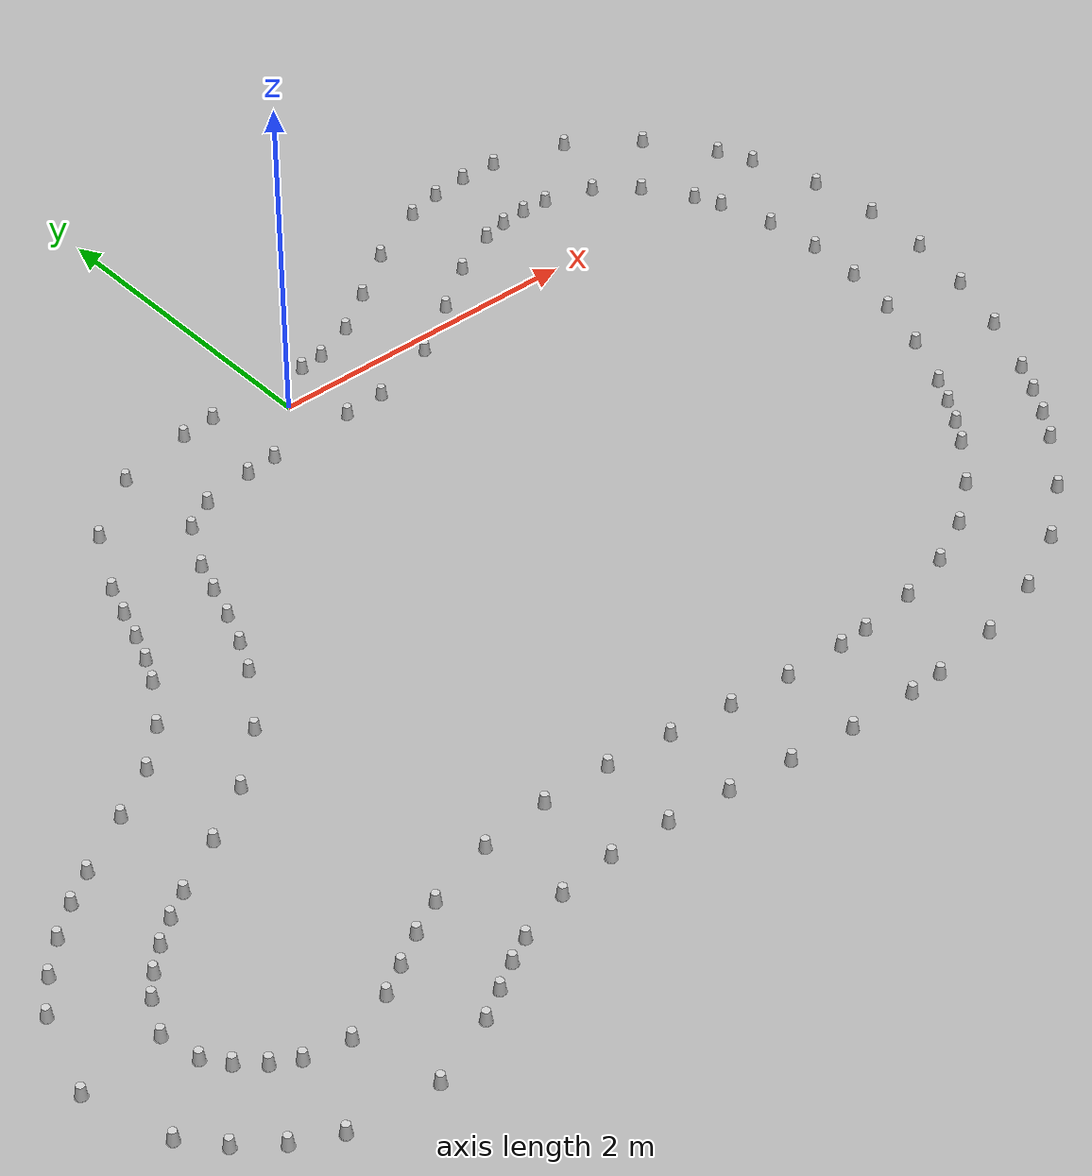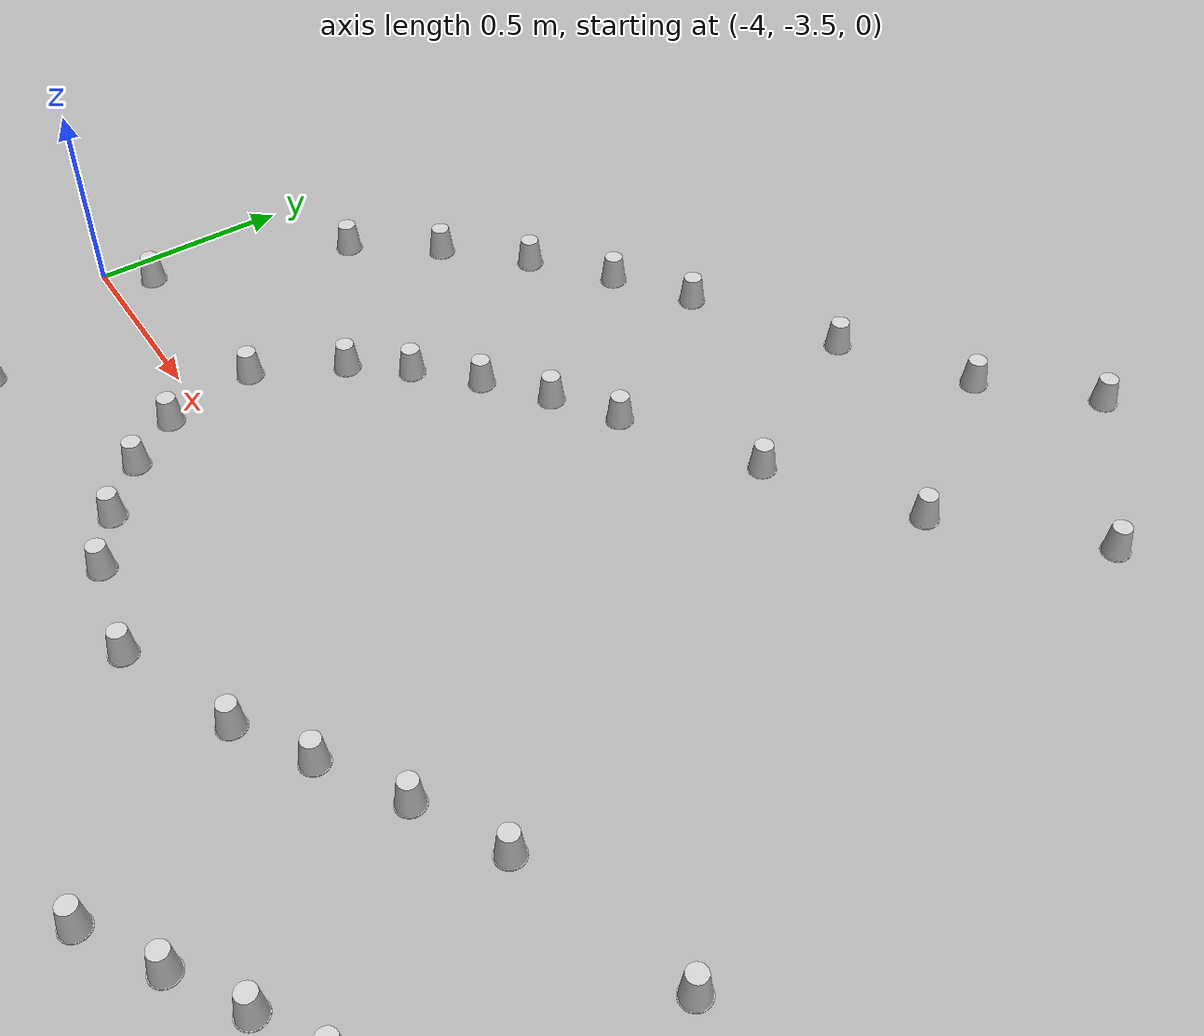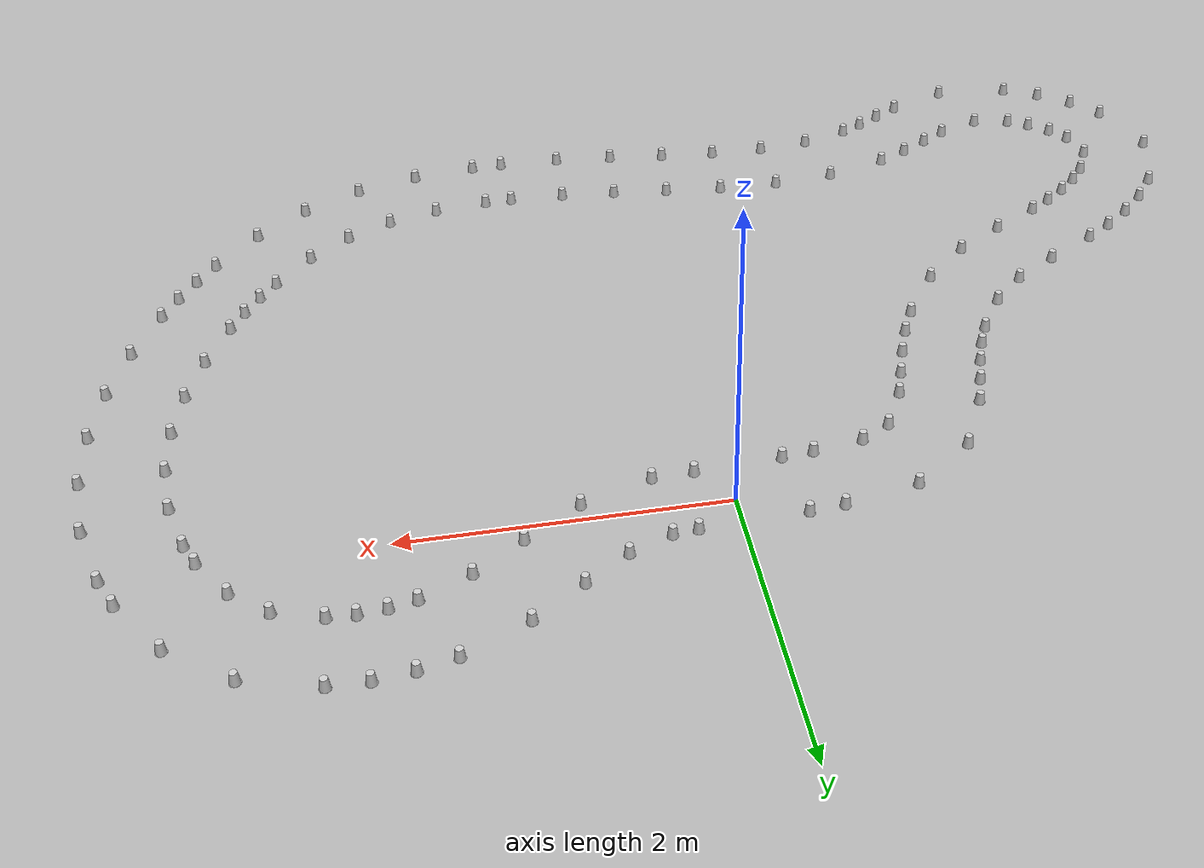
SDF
<?xml version='1.0' encoding='UTF-8'?>
<sdf version="1.4">
  <model name="some track">
    <include>
      <uri>model://cone_yellow</uri>
      <pose>0.1952887267832601 -0.2795931515854953 0 0 0 0</pose>
      <name>cone_right_0</name>
    </include>
    <include>
      <uri>model://cone_yellow</uri>
      <pose>0.45160578599919166 -0.26767883614049864 0 0 0 0</pose>
      <name>cone_right_1</name>
    </include>
    <include>
      <uri>model://cone_yellow</uri>
      <pose>0.8969519919301652 -0.11410654120415022 0 0 0 0</pose>
      <name>cone_right_2</name>
    </include>
    <include>
      <uri>model://cone_yellow</uri>
      <pose>1.25415394540925 0.12065823146250787 0 0 0 0</pose>
      <name>cone_right_3</name>
    </include>
    <include>
      <uri>model://cone_yellow</uri>
      <pose>1.5678517027770038 0.34187161370884434 0 0 0 0</pose>
      <name>cone_right_4</name>
    </include>
    <include>
      <uri>model://cone_yellow</uri>
      <pose>1.8789767391075562 0.48695296722528403 0 0 0 0</pose>
      <name>cone_right_5</name>
    </include>
    <include>
      <uri>model://cone_yellow</uri>
      <pose>2.044325364594258 0.5252332641263189 0 0 0 0</pose>
      <name>cone_right_6</name>
    </include>
    <include>
      <uri>model://cone_yellow</uri>
      <pose>2.214069341566254 0.540729741719355 0 0 0 0</pose>
      <name>cone_right_7</name>
    </include>
    <include>
      <uri>model://cone_yellow</uri>
      <pose>2.3806807632931477 0.5316878824063316 0 0 0 0</pose>
      <name>cone_right_8</name>
    </include>
    <include>
      <uri>model://cone_yellow</uri>
      <pose>2.675654765148086 0.4382001781138378 0 0 0 0</pose>
      <name>cone_right_9</name>
    </include>
    <include>
      <uri>model://cone_yellow</uri>
      <pose>2.902191498681817 0.24862296450018867 0 0 0 0</pose>
      <name>cone_right_10</name>
    </include>
    <include>
      <uri>model://cone_yellow</uri>
      <pose>3.084091108342087 -0.02715534310106199 0 0 0 0</pose>
      <name>cone_right_11</name>
    </include>
    <include>
      <uri>model://cone_yellow</uri>
      <pose>3.1539623970204054 -0.18557533441812596 0 0 0 0</pose>
      <name>cone_right_12</name>
    </include>
    <include>
      <uri>model://cone_yellow</uri>
      <pose>3.245575604065701 -0.5187520738251418 0 0 0 0</pose>
      <name>cone_right_13</name>
    </include>
    <include>
      <uri>model://cone_yellow</uri>
      <pose>3.2768707166137063 -0.8644308128918262 0 0 0 0</pose>
      <name>cone_right_14</name>
    </include>
    <include>
      <uri>model://cone_yellow</uri>
      <pose>3.2540793244188735 -1.2143624718607224 0 0 0 0</pose>
      <name>cone_right_15</name>
    </include>
    <include>
      <uri>model://cone_yellow</uri>
      <pose>3.1821673367527934 -1.5623931087279697 0 0 0 0</pose>
      <name>cone_right_16</name>
    </include>
    <include>
      <uri>model://cone_yellow</uri>
      <pose>3.0653537776231934 -1.906242100515302 0 0 0 0</pose>
      <name>cone_right_17</name>
    </include>
    <include>
      <uri>model://cone_yellow</uri>
      <pose>2.908095302444684 -2.243316839419225 0 0 0 0</pose>
      <name>cone_right_18</name>
    </include>
    <include>
      <uri>model://cone_yellow</uri>
      <pose>2.815815826580324 -2.4078399576608867 0 0 0 0</pose>
      <name>cone_right_19</name>
    </include>
    <include>
      <uri>model://cone_yellow</uri>
      <pose>2.715327918054046 -2.566386416972675 0 0 0 0</pose>
      <name>cone_right_20</name>
    </include>
    <include>
      <uri>model://cone_yellow</uri>
      <pose>2.6068994477109886 -2.7165487262369017 0 0 0 0</pose>
      <name>cone_right_21</name>
    </include>
    <include>
      <uri>model://cone_yellow</uri>
      <pose>2.3669670645076804 -2.98373153296215 0 0 0 0</pose>
      <name>cone_right_22</name>
    </include>
    <include>
      <uri>model://cone_yellow</uri>
      <pose>2.09791196473016 -3.1947072471971207 0 0 0 0</pose>
      <name>cone_right_23</name>
    </include>
    <include>
      <uri>model://cone_yellow</uri>
      <pose>1.7994530576844796 -3.3406791347045055 0 0 0 0</pose>
      <name>cone_right_24</name>
    </include>
    <include>
      <uri>model://cone_yellow</uri>
      <pose>1.464961499367734 -3.432287202489749 0 0 0 0</pose>
      <name>cone_right_25</name>
    </include>
    <include>
      <uri>model://cone_yellow</uri>
      <pose>1.1035175708118503 -3.4772882555636406 0 0 0 0</pose>
      <name>cone_right_26</name>
    </include>
    <include>
      <uri>model://cone_yellow</uri>
      <pose>0.917280924601265 -3.4845167935816344 0 0 0 0</pose>
      <name>cone_right_27</name>
    </include>
    <include>
      <uri>model://cone_yellow</uri>
      <pose>0.543277060583318 -3.473876592139264 0 0 0 0</pose>
      <name>cone_right_28</name>
    </include>
    <include>
      <uri>model://cone_yellow</uri>
      <pose>0.16878354519314834 -3.4396558216366495 0 0 0 0</pose>
      <name>cone_right_29</name>
    </include>
    <include>
      <uri>model://cone_yellow</uri>
      <pose>-0.21387866557204388 -3.3963315091464974 0 0 0 0</pose>
      <name>cone_right_30</name>
    </include>
    <include>
      <uri>model://cone_yellow</uri>
      <pose>-0.6112634641730288 -3.35982895256339 0 0 0 0</pose>
      <name>cone_right_31</name>
    </include>
    <include>
      <uri>model://cone_yellow</uri>
      <pose>-1.0263280413146767 -3.349691273107797 0 0 0 0</pose>
      <name>cone_right_32</name>
    </include>
    <include>
      <uri>model://cone_yellow</uri>
      <pose>-1.4526348114397525 -3.392496012549326 0 0 0 0</pose>
      <name>cone_right_33</name>
    </include>
    <include>
      <uri>model://cone_yellow</uri>
      <pose>-1.879064332110703 -3.5186605490066594 0 0 0 0</pose>
      <name>cone_right_34</name>
    </include>
    <include>
      <uri>model://cone_yellow</uri>
      <pose>-2.0860980041334534 -3.621115313809681 0 0 0 0</pose>
      <name>cone_right_35</name>
    </include>
    <include>
      <uri>model://cone_yellow</uri>
      <pose>-2.277054788752283 -3.7342718002427793 0 0 0 0</pose>
      <name>cone_right_36</name>
    </include>
    <include>
      <uri>model://cone_yellow</uri>
      <pose>-2.4504599828133062 -3.8365645518561533 0 0 0 0</pose>
      <name>cone_right_37</name>
    </include>
    <include>
      <uri>model://cone_yellow</uri>
      <pose>-2.7508094398294785 -3.9487938706104004 0 0 0 0</pose>
      <name>cone_right_38</name>
    </include>
    <include>
      <uri>model://cone_yellow</uri>
      <pose>-3.0046463333656988 -3.8971978570324373 0 0 0 0</pose>
      <name>cone_right_39</name>
    </include>
    <include>
      <uri>model://cone_yellow</uri>
      <pose>-3.1430770702031436 -3.816442447764018 0 0 0 0</pose>
      <name>cone_right_40</name>
    </include>
    <include>
      <uri>model://cone_yellow</uri>
      <pose>-3.271112372015774 -3.705353228714746 0 0 0 0</pose>
      <name>cone_right_41</name>
    </include>
    <include>
      <uri>model://cone_yellow</uri>
      <pose>-3.3681428542012766 -3.5769524217683752 0 0 0 0</pose>
      <name>cone_right_42</name>
    </include>
    <include>
      <uri>model://cone_yellow</uri>
      <pose>-3.4154530842371003 -3.3428762871384876 0 0 0 0</pose>
      <name>cone_right_43</name>
    </include>
    <include>
      <uri>model://cone_yellow</uri>
      <pose>-3.305078417374178 -3.125408055915832 0 0 0 0</pose>
      <name>cone_right_44</name>
    </include>
    <include>
      <uri>model://cone_yellow</uri>
      <pose>-3.198314939745624 -2.9975953920851066 0 0 0 0</pose>
      <name>cone_right_45</name>
    </include>
    <include>
      <uri>model://cone_yellow</uri>
      <pose>-3.0650483183974133 -2.8724474255004315 0 0 0 0</pose>
      <name>cone_right_46</name>
    </include>
    <include>
      <uri>model://cone_yellow</uri>
      <pose>-2.917932999715441 -2.759911668094464 0 0 0 0</pose>
      <name>cone_right_47</name>
    </include>
    <include>
      <uri>model://cone_yellow</uri>
      <pose>-2.763559345727985 -2.6601670695024207 0 0 0 0</pose>
      <name>cone_right_48</name>
    </include>
    <include>
      <uri>model://cone_yellow</uri>
      <pose>-2.4367752729235956 -2.4741393747144604 0 0 0 0</pose>
      <name>cone_right_49</name>
    </include>
    <include>
      <uri>model://cone_yellow</uri>
      <pose>-2.1005772817493003 -2.2630996075782046 0 0 0 0</pose>
      <name>cone_right_50</name>
    </include>
    <include>
      <uri>model://cone_yellow</uri>
      <pose>-1.785849642618185 -1.971074793672893 0 0 0 0</pose>
      <name>cone_right_51</name>
    </include>
    <include>
      <uri>model://cone_yellow</uri>
      <pose>-1.5369220507825871 -1.6038577777540914 0 0 0 0</pose>
      <name>cone_right_52</name>
    </include>
    <include>
      <uri>model://cone_yellow</uri>
      <pose>-1.4379969683025196 -1.4009722105331783 0 0 0 0</pose>
      <name>cone_right_53</name>
    </include>
    <include>
      <uri>model://cone_yellow</uri>
      <pose>-1.3544730563115044 -1.18837501822779 0 0 0 0</pose>
      <name>cone_right_54</name>
    </include>
    <include>
      <uri>model://cone_yellow</uri>
      <pose>-1.2830879329979494 -0.9766119877124547 0 0 0 0</pose>
      <name>cone_right_55</name>
    </include>
    <include>
      <uri>model://cone_yellow</uri>
      <pose>-1.2155731682564568 -0.7824951450537574 0 0 0 0</pose>
      <name>cone_right_56</name>
    </include>
    <include>
      <uri>model://cone_yellow</uri>
      <pose>-1.0617377628920086 -0.49437633217907795 0 0 0 0</pose>
      <name>cone_right_57</name>
    </include>
    <include>
      <uri>model://cone_yellow</uri>
      <pose>-0.8680444273980805 -0.3822742509888316 0 0 0 0</pose>
      <name>cone_right_58</name>
    </include>
    <include>
      <uri>model://cone_yellow</uri>
      <pose>-0.5462032142118229 -0.32921608831248844 0 0 0 0</pose>
      <name>cone_right_59</name>
    </include>
    <include>
      <uri>model://cone_yellow</uri>
      <pose>-0.34845180618092453 -0.3109143245325599 0 0 0 0</pose>
      <name>cone_right_60</name>
    </include>
    <include>
      <uri>model://cone_blue</uri>
      <pose>0.26422089481575045 0.2156324093565269 0 0 0 0</pose>
      <name>cone_left_0</name>
    </include>
    <include>
      <uri>model://cone_blue</uri>
      <pose>0.41818552711847135 0.23120299986512866 0 0 0 0</pose>
      <name>cone_left_1</name>
    </include>
    <include>
      <uri>model://cone_blue</uri>
      <pose>0.6855457011929342 0.33900203324211364 0 0 0 0</pose>
      <name>cone_left_2</name>
    </include>
    <include>
      <uri>model://cone_blue</uri>
      <pose>0.9636187690254706 0.5275848971943644 0 0 0 0</pose>
      <name>cone_left_3</name>
    </include>
    <include>
      <uri>model://cone_blue</uri>
      <pose>1.2874182486939345 0.7558246035893851 0 0 0 0</pose>
      <name>cone_left_4</name>
    </include>
    <include>
      <uri>model://cone_blue</uri>
      <pose>1.6939412166579002 0.9514546953510067 0 0 0 0</pose>
      <name>cone_left_5</name>
    </include>
    <include>
      <uri>model://cone_blue</uri>
      <pose>1.9247760640930625 1.0107309106187348 0 0 0 0</pose>
      <name>cone_left_6</name>
    </include>
    <include>
      <uri>model://cone_blue</uri>
      <pose>2.1618018587975305 1.037990347684699 0 0 0 0</pose>
      <name>cone_left_7</name>
    </include>
    <include>
      <uri>model://cone_blue</uri>
      <pose>2.4000798309265177 1.0313114168549762 0 0 0 0</pose>
      <name>cone_left_8</name>
    </include>
    <include>
      <uri>model://cone_blue</uri>
      <pose>2.859376777020838 0.9032229972887986 0 0 0 0</pose>
      <name>cone_left_9</name>
    </include>
    <include>
      <uri>model://cone_blue</uri>
      <pose>3.2448183426067567 0.6127751934128165 0 0 0 0</pose>
      <name>cone_left_10</name>
    </include>
    <include>
      <uri>model://cone_blue</uri>
      <pose>3.514133373077681 0.227920431015339 0 0 0 0</pose>
      <name>cone_left_11</name>
    </include>
    <include>
      <uri>model://cone_blue</uri>
      <pose>3.6096290131666344 0.02025939280214882 0 0 0 0</pose>
      <name>cone_left_12</name>
    </include>
    <include>
      <uri>model://cone_blue</uri>
      <pose>3.7326935334383977 -0.4059862860894265 0 0 0 0</pose>
      <name>cone_left_13</name>
    </include>
    <include>
      <uri>model://cone_blue</uri>
      <pose>3.7761442396724996 -0.8374873689311769 0 0 0 0</pose>
      <name>cone_left_14</name>
    </include>
    <include>
      <uri>model://cone_blue</uri>
      <pose>3.751701443286542 -1.2630679829826899 0 0 0 0</pose>
      <name>cone_left_15</name>
    </include>
    <include>
      <uri>model://cone_blue</uri>
      <pose>3.6686121400996194 -1.678028109038724 0 0 0 0</pose>
      <name>cone_left_16</name>
    </include>
    <include>
      <uri>model://cone_blue</uri>
      <pose>3.5343461296382275 -2.0795804221623237 0 0 0 0</pose>
      <name>cone_left_17</name>
    </include>
    <include>
      <uri>model://cone_blue</uri>
      <pose>3.356088190069415 -2.465358215377975 0 0 0 0</pose>
      <name>cone_left_18</name>
    </include>
    <include>
      <uri>model://cone_blue</uri>
      <pose>3.25229803496807 -2.6517319045573693 0 0 0 0</pose>
      <name>cone_left_19</name>
    </include>
    <include>
      <uri>model://cone_blue</uri>
      <pose>3.1381554059976255 -2.833251393017344 0 0 0 0</pose>
      <name>cone_left_20</name>
    </include>
    <include>
      <uri>model://cone_blue</uri>
      <pose>3.012976105951288 -3.00827076454116 0 0 0 0</pose>
      <name>cone_left_21</name>
    </include>
    <include>
      <uri>model://cone_blue</uri>
      <pose>2.727095913797957 -3.3305848332331167 0 0 0 0</pose>
      <name>cone_left_22</name>
    </include>
    <include>
      <uri>model://cone_blue</uri>
      <pose>2.3894334989486476 -3.6009278708573422 0 0 0 0</pose>
      <name>cone_left_23</name>
    </include>
    <include>
      <uri>model://cone_blue</uri>
      <pose>1.99893615253385 -3.799161953214989 0 0 0 0</pose>
      <name>cone_left_24</name>
    </include>
    <include>
      <uri>model://cone_blue</uri>
      <pose>1.5798748173800758 -3.918902994818147 0 0 0 0</pose>
      <name>cone_left_25</name>
    </include>
    <include>
      <uri>model://cone_blue</uri>
      <pose>1.1513022065219234 -3.974999646421893 0 0 0 0</pose>
      <name>cone_left_26</name>
    </include>
    <include>
      <uri>model://cone_blue</uri>
      <pose>0.937682861402062 -3.984100381157103 0 0 0 0</pose>
      <name>cone_left_27</name>
    </include>
    <include>
      <uri>model://cone_blue</uri>
      <pose>0.5195032912685055 -3.973311080228109 0 0 0 0</pose>
      <name>cone_left_28</name>
    </include>
    <include>
      <uri>model://cone_blue</uri>
      <pose>0.11812789485560947 -3.9370832083865963 0 0 0 0</pose>
      <name>cone_left_29</name>
    </include>
    <include>
      <uri>model://cone_blue</uri>
      <pose>-0.27016310096206914 -3.893153471556399 0 0 0 0</pose>
      <name>cone_left_30</name>
    </include>
    <include>
      <uri>model://cone_blue</uri>
      <pose>-0.651659875371084 -3.8581944107989283 0 0 0 0</pose>
      <name>cone_left_31</name>
    </include>
    <include>
      <uri>model://cone_blue</uri>
      <pose>-1.026192903236452 -3.8496912548454967 0 0 0 0</pose>
      <name>cone_left_32</name>
    </include>
    <include>
      <uri>model://cone_blue</uri>
      <pose>-1.3817593407442654 -3.8874471895897416 0 0 0 0</pose>
      <name>cone_left_33</name>
    </include>
    <include>
      <uri>model://cone_blue</uri>
      <pose>-1.7083444020704261 -3.9886123608842636 0 0 0 0</pose>
      <name>cone_left_34</name>
    </include>
    <include>
      <uri>model://cone_blue</uri>
      <pose>-1.8609257839299007 -4.067542767321002 0 0 0 0</pose>
      <name>cone_left_35</name>
    </include>
    <include>
      <uri>model://cone_blue</uri>
      <pose>-2.020952929056097 -4.163703794230366 0 0 0 0</pose>
      <name>cone_left_36</name>
    </include>
    <include>
      <uri>model://cone_blue</uri>
      <pose>-2.1964095201724123 -4.267213321077601 0 0 0 0</pose>
      <name>cone_left_37</name>
    </include>
    <include>
      <uri>model://cone_blue</uri>
      <pose>-2.6136121996127843 -4.429602478350448 0 0 0 0</pose>
      <name>cone_left_38</name>
    </include>
    <include>
      <uri>model://cone_blue</uri>
      <pose>-3.135861164695555 -4.379673419148362 0 0 0 0</pose>
      <name>cone_left_39</name>
    </include>
    <include>
      <uri>model://cone_blue</uri>
      <pose>-3.37804762247014 -4.257791334210266 0 0 0 0</pose>
      <name>cone_left_40</name>
    </include>
    <include>
      <uri>model://cone_blue</uri>
      <pose>-3.587891193902645 -4.092200973963398 0 0 0 0</pose>
      <name>cone_left_41</name>
    </include>
    <include>
      <uri>model://cone_blue</uri>
      <pose>-3.757036328820572 -3.891216427659173 0 0 0 0</pose>
      <name>cone_left_42</name>
    </include>
    <include>
      <uri>model://cone_blue</uri>
      <pose>-3.912898614817001 -3.393353451342522 0 0 0 0</pose>
      <name>cone_left_43</name>
    </include>
    <include>
      <uri>model://cone_blue</uri>
      <pose>-3.746185375228606 -2.8899836482338515 0 0 0 0</pose>
      <name>cone_left_44</name>
    </include>
    <include>
      <uri>model://cone_blue</uri>
      <pose>-3.58980542347924 -2.686572561498638 0 0 0 0</pose>
      <name>cone_left_45</name>
    </include>
    <include>
      <uri>model://cone_blue</uri>
      <pose>-3.4117228074451216 -2.512146442094182 0 0 0 0</pose>
      <name>cone_left_46</name>
    </include>
    <include>
      <uri>model://cone_blue</uri>
      <pose>-3.224696723559125 -2.365074970542734 0 0 0 0</pose>
      <name>cone_left_47</name>
    </include>
    <include>
      <uri>model://cone_blue</uri>
      <pose>-3.0368377035498844 -2.2414560245726673 0 0 0 0</pose>
      <name>cone_left_48</name>
    </include>
    <include>
      <uri>model://cone_blue</uri>
      <pose>-2.680973820453115 -2.037828626067956 0 0 0 0</pose>
      <name>cone_left_49</name>
    </include>
    <include>
      <uri>model://cone_blue</uri>
      <pose>-2.379420896246533 -1.8480740196271497 0 0 0 0</pose>
      <name>cone_left_50</name>
    </include>
    <include>
      <uri>model://cone_blue</uri>
      <pose>-2.150100530437398 -1.6285528371169447 0 0 0 0</pose>
      <name>cone_left_51</name>
    </include>
    <include>
      <uri>model://cone_blue</uri>
      <pose>-1.9661279477905675 -1.3473771781494137 0 0 0 0</pose>
      <name>cone_left_52</name>
    </include>
    <include>
      <uri>model://cone_blue</uri>
      <pose>-1.8883836019429459 -1.18382737352791 0 0 0 0</pose>
      <name>cone_left_53</name>
    </include>
    <include>
      <uri>model://cone_blue</uri>
      <pose>-1.8204558585863913 -1.0071016666726214 0 0 0 0</pose>
      <name>cone_left_54</name>
    </include>
    <include>
      <uri>model://cone_blue</uri>
      <pose>-1.7570894207036087 -0.817481256384965 0 0 0 0</pose>
      <name>cone_left_55</name>
    </include>
    <include>
      <uri>model://cone_blue</uri>
      <pose>-1.6878362380419918 -0.6182770190239464 0 0 0 0</pose>
      <name>cone_left_56</name>
    </include>
    <include>
      <uri>model://cone_blue</uri>
      <pose>-1.4843011722916617 -0.2270934014922468 0 0 0 0</pose>
      <name>cone_left_57</name>
    </include>
    <include>
      <uri>model://cone_blue</uri>
      <pose>-1.0876041298462624 0.06694010437046213 0 0 0 0</pose>
      <name>cone_left_58</name>
    </include>
    <include>
      <uri>model://cone_blue</uri>
      <pose>-0.6131811433656031 0.1662775615017864 0 0 0 0</pose>
      <name>cone_left_59</name>
    </include>
    <include>
      <uri>model://cone_blue</uri>
      <pose>-0.395056614034454 0.1869089291277483 0 0 0 0</pose>
      <name>cone_left_60</name>
    </include>

  </model>
</sdf>

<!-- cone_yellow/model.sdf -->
<sdf version='1.4'>
  <model name="cone_yellow">
    <link name="link">
    <collision name="collision"><geometry><box><size> 0.05 0.05 0.01</size>
             </box></geometry></collision>
      <visual name="visual">
        <geometry>
          <mesh>
            <uri>model://cup.dae</uri>
            <scale>1 1 1</scale>
          </mesh>
        </geometry>
        <material>
            <script>
              <uri>model://cone_yellow/materials/scripts</uri>
              <uri>model://cone_yellow/materials/textures</uri>
              <name>cone_yellow/Image</name>
            </script>
        </material>
      </visual>
    </link>
  </model>
</sdf>

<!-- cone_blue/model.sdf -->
<sdf version='1.4'>
  <model name="cone_blue">
    <link name="link">
    <collision name="collision"><geometry><box><size> 0.05 0.05 0.01</size>
             </box></geometry></collision>
      <visual name="visual">
        <geometry>
          <mesh>
            <uri>model://cup.dae</uri>
            <scale>1 1 1</scale>
          </mesh>
        </geometry>
        <material>
            <script>
              <uri>model://cone_blue/materials/scripts</uri>
              <uri>model://cone_blue/materials/textures</uri>
              <name>cone_blue/Image</name>
            </script>
        </material>
      </visual>
    </link>
  </model>
</sdf>
